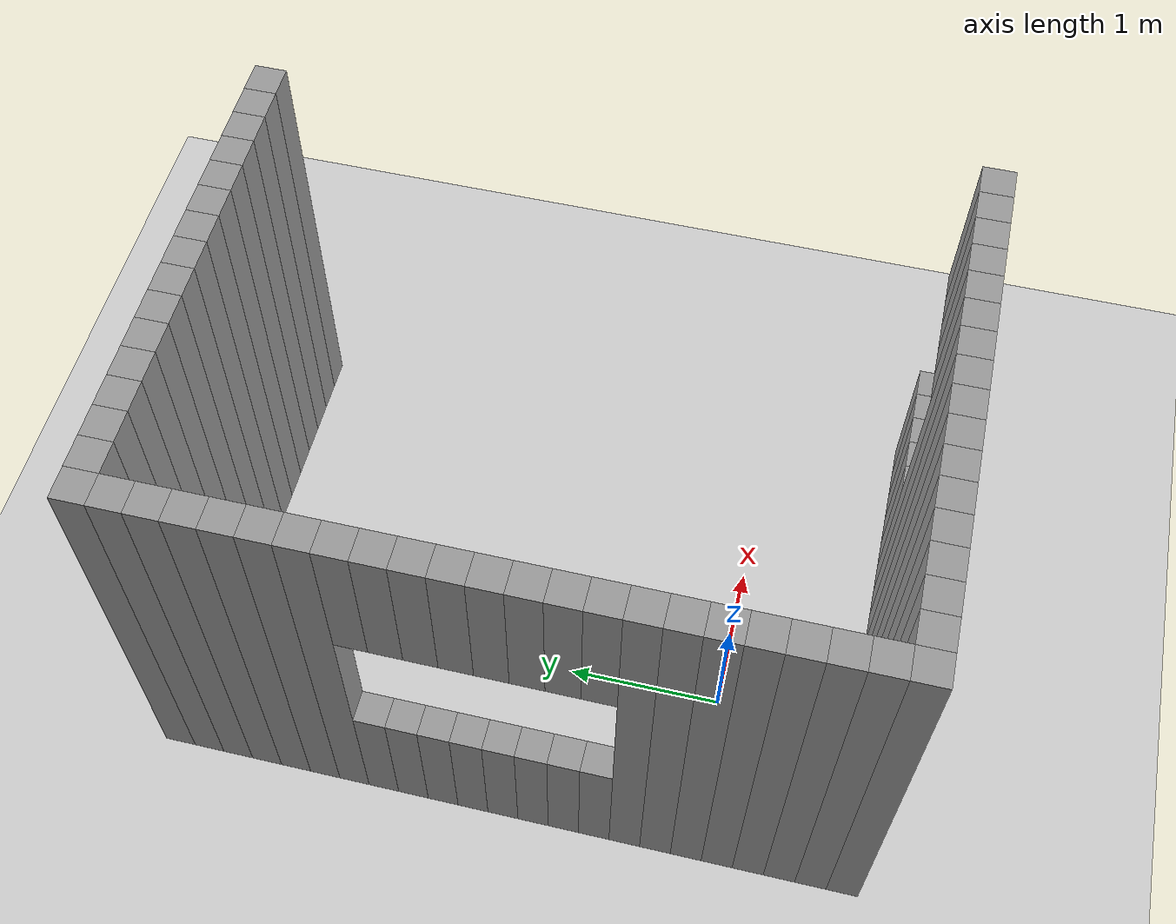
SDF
<sdf version="1.7">
 <world name="default">
  <model name="ground_plane">
   <static>1</static>
   <link name="link">
    <collision name="collision">
     <geometry><plane><normal>0 0 1</normal><size>100 100</size></plane></geometry>
     <surface>
      <contact><collide_bitmask>65535</collide_bitmask></contact>
      <friction><ode><mu>100</mu><mu2>50</mu2></ode></friction>
     </surface>
    </collision>
    <visual name="visual">
     <cast_shadows>0</cast_shadows>
     <geometry><plane><normal>0 0 1</normal><size>100 100</size></plane></geometry>
     <material>
      <script><uri>file://media/materials/scripts/gazebo.material</uri><name>Gazebo/Grey</name></script>
     </material>
    </visual>
   </link>
  </model>
  <model name="05222">
   <pose>-1 -1 0 0 -0 0</pose>
   <link name="Wall_0">
    <collision name="Wall_0_Collision">
     <geometry><box><size>0.2 0.2 3</size></box></geometry>
     <pose>0 0 1.5 0 -0 0</pose>
    </collision>
    <visual name="Wall_0_Visual">
     <pose>0 0 1.5 0 -0 0</pose>
     <geometry><box><size>0.2 0.2 3</size></box></geometry>
     <material>
      <script><uri>file://media/materials/scripts/gazebo.material</uri><name>Gazebo/Grey</name></script>
      <ambient>1 1 1 1</ambient>
     </material>
     <meta><layer>0</layer></meta>
    </visual>
   </link>
   <link name="Wall_1">
    <collision name="Wall_1_Collision">
     <geometry><box><size>0.2 0.2 3</size></box></geometry>
     <pose>0 0 1.5 0 -0 0</pose>
    </collision>
    <visual name="Wall_1_Visual">
     <pose>0 0 1.5 0 -0 0</pose>
     <geometry><box><size>0.2 0.2 3</size></box></geometry>
     <material>
      <script><uri>file://media/materials/scripts/gazebo.material</uri><name>Gazebo/Grey</name></script>
      <ambient>1 1 1 1</ambient>
     </material>
     <meta><layer>0</layer></meta>
    </visual>
    <pose>0.2 0.0 0 0 -0 0</pose>
   </link>
   <link name="Wall_2">
    <collision name="Wall_2_Collision">
     <geometry><box><size>0.2 0.2 3</size></box></geometry>
     <pose>0 0 1.5 0 -0 0</pose>
    </collision>
    <visual name="Wall_2_Visual">
     <pose>0 0 1.5 0 -0 0</pose>
     <geometry><box><size>0.2 0.2 3</size></box></geometry>
     <material>
      <script><uri>file://media/materials/scripts/gazebo.material</uri><name>Gazebo/Grey</name></script>
      <ambient>1 1 1 1</ambient>
     </material>
     <meta><layer>0</layer></meta>
    </visual>
    <pose>0.4 0.0 0 0 -0 0</pose>
   </link>
   <link name="Wall_3">
    <collision name="Wall_3_Collision">
     <geometry><box><size>0.2 0.2 3</size></box></geometry>
     <pose>0 0 1.5 0 -0 0</pose>
    </collision>
    <visual name="Wall_3_Visual">
     <pose>0 0 1.5 0 -0 0</pose>
     <geometry><box><size>0.2 0.2 3</size></box></geometry>
     <material>
      <script><uri>file://media/materials/scripts/gazebo.material</uri><name>Gazebo/Grey</name></script>
      <ambient>1 1 1 1</ambient>
     </material>
     <meta><layer>0</layer></meta>
    </visual>
    <pose>0.6000000000000001 0.0 0 0 -0 0</pose>
   </link>
   <link name="Wall_4">
    <collision name="Wall_4_Collision">
     <geometry><box><size>0.2 0.2 3</size></box></geometry>
     <pose>0 0 1.5 0 -0 0</pose>
    </collision>
    <visual name="Wall_4_Visual">
     <pose>0 0 1.5 0 -0 0</pose>
     <geometry><box><size>0.2 0.2 3</size></box></geometry>
     <material>
      <script><uri>file://media/materials/scripts/gazebo.material</uri><name>Gazebo/Grey</name></script>
      <ambient>1 1 1 1</ambient>
     </material>
     <meta><layer>0</layer></meta>
    </visual>
    <pose>0.8 0.0 0 0 -0 0</pose>
   </link>
   <link name="Wall_5">
    <collision name="Wall_5_Collision">
     <geometry><box><size>0.2 0.2 3</size></box></geometry>
     <pose>0 0 1.5 0 -0 0</pose>
    </collision>
    <visual name="Wall_5_Visual">
     <pose>0 0 1.5 0 -0 0</pose>
     <geometry><box><size>0.2 0.2 3</size></box></geometry>
     <material>
      <script><uri>file://media/materials/scripts/gazebo.material</uri><name>Gazebo/Grey</name></script>
      <ambient>1 1 1 1</ambient>
     </material>
     <meta><layer>0</layer></meta>
    </visual>
    <pose>1.0 0.0 0 0 -0 0</pose>
   </link>
   <link name="Wall_6">
    <collision name="Wall_6_Collision">
     <geometry><box><size>0.2 0.2 3</size></box></geometry>
     <pose>0 0 1.5 0 -0 0</pose>
    </collision>
    <visual name="Wall_6_Visual">
     <pose>0 0 1.5 0 -0 0</pose>
     <geometry><box><size>0.2 0.2 3</size></box></geometry>
     <material>
      <script><uri>file://media/materials/scripts/gazebo.material</uri><name>Gazebo/Grey</name></script>
      <ambient>1 1 1 1</ambient>
     </material>
     <meta><layer>0</layer></meta>
    </visual>
    <pose>1.2000000000000002 0.0 0 0 -0 0</pose>
   </link>
   <link name="Wall_7">
    <collision name="Wall_7_Collision">
     <geometry><box><size>0.2 0.2 3</size></box></geometry>
     <pose>0 0 1.5 0 -0 0</pose>
    </collision>
    <visual name="Wall_7_Visual">
     <pose>0 0 1.5 0 -0 0</pose>
     <geometry><box><size>0.2 0.2 3</size></box></geometry>
     <material>
      <script><uri>file://media/materials/scripts/gazebo.material</uri><name>Gazebo/Grey</name></script>
      <ambient>1 1 1 1</ambient>
     </material>
     <meta><layer>0</layer></meta>
    </visual>
    <pose>1.4000000000000001 0.0 0 0 -0 0</pose>
   </link>
   <link name="Wall_8">
    <collision name="Wall_8_Collision">
     <geometry><box><size>0.2 0.2 3</size></box></geometry>
     <pose>0 0 1.5 0 -0 0</pose>
    </collision>
    <visual name="Wall_8_Visual">
     <pose>0 0 1.5 0 -0 0</pose>
     <geometry><box><size>0.2 0.2 3</size></box></geometry>
     <material>
      <script><uri>file://media/materials/scripts/gazebo.material</uri><name>Gazebo/Grey</name></script>
      <ambient>1 1 1 1</ambient>
     </material>
     <meta><layer>0</layer></meta>
    </visual>
    <pose>1.6 0.0 0 0 -0 0</pose>
   </link>
   <link name="Wall_9">
    <collision name="Wall_9_Collision">
     <geometry><box><size>0.2 0.2 3</size></box></geometry>
     <pose>0 0 1.5 0 -0 0</pose>
    </collision>
    <visual name="Wall_9_Visual">
     <pose>0 0 1.5 0 -0 0</pose>
     <geometry><box><size>0.2 0.2 3</size></box></geometry>
     <material>
      <script><uri>file://media/materials/scripts/gazebo.material</uri><name>Gazebo/Grey</name></script>
      <ambient>1 1 1 1</ambient>
     </material>
     <meta><layer>0</layer></meta>
    </visual>
    <pose>1.8 0.0 0 0 -0 0</pose>
   </link>
   <link name="Wall_10">
    <collision name="Wall_10_Collision">
     <geometry><box><size>0.2 0.2 3</size></box></geometry>
     <pose>0 0 1.5 0 -0 0</pose>
    </collision>
    <visual name="Wall_10_Visual">
     <pose>0 0 1.5 0 -0 0</pose>
     <geometry><box><size>0.2 0.2 3</size></box></geometry>
     <material>
      <script><uri>file://media/materials/scripts/gazebo.material</uri><name>Gazebo/Grey</name></script>
      <ambient>1 1 1 1</ambient>
     </material>
     <meta><layer>0</layer></meta>
    </visual>
    <pose>2.0 0.0 0 0 -0 0</pose>
   </link>
   <link name="Wall_11">
    <collision name="Wall_11_Collision">
     <geometry><box><size>0.2 0.2 3</size></box></geometry>
     <pose>0 0 1.5 0 -0 0</pose>
    </collision>
    <visual name="Wall_11_Visual">
     <pose>0 0 1.5 0 -0 0</pose>
     <geometry><box><size>0.2 0.2 3</size></box></geometry>
     <material>
      <script><uri>file://media/materials/scripts/gazebo.material</uri><name>Gazebo/Grey</name></script>
      <ambient>1 1 1 1</ambient>
     </material>
     <meta><layer>0</layer></meta>
    </visual>
    <pose>2.2 0.0 0 0 -0 0</pose>
   </link>
   <link name="Wall_12">
    <collision name="Wall_12_Collision">
     <geometry><box><size>0.2 0.2 1.0</size></box></geometry>
     <pose>0 0 0.5 0 -0 0</pose>
    </collision>
    <visual name="Wall_12_Visual">
     <pose>0 0 0.5 0 -0 0</pose>
     <geometry><box><size>0.2 0.2 1.0</size></box></geometry>
     <material>
      <script><uri>file://media/materials/scripts/gazebo.material</uri><name>Gazebo/Grey</name></script>
      <ambient>1 1 1 1</ambient>
     </material>
     <meta><layer>0</layer></meta>
    </visual>
    <pose>2.4000000000000004 0.0 0 0 -0 0</pose>
   </link>
   <link name="Wall_13">
    <collision name="Wall_13_Collision">
     <geometry><box><size>0.2 0.2 1.0</size></box></geometry>
     <pose>0 0 2.5 0 -0 0</pose>
    </collision>
    <visual name="Wall_13_Visual">
     <pose>0 0 2.5 0 -0 0</pose>
     <geometry><box><size>0.2 0.2 1.0</size></box></geometry>
     <material>
      <script><uri>file://media/materials/scripts/gazebo.material</uri><name>Gazebo/Grey</name></script>
      <ambient>1 1 1 1</ambient>
     </material>
     <meta><layer>0</layer></meta>
    </visual>
    <pose>2.4000000000000004 0.0 0 0 -0 0</pose>
   </link>
   <link name="Window_12">
    <collision name="Window_12_Collision">
     <geometry><box><size>0.2 0.2 1.0</size></box></geometry>
     <pose>0 0 1.5 0 -0 0</pose>
    </collision>
    <visual name="Wall_13_Visual">
     <pose>0 0 2.5 0 -0 0</pose>
     <geometry><box><size>0.2 0.2 1.0</size></box></geometry>
     <material>
      <script><uri>file://media/materials/scripts/gazebo.material</uri><name>Gazebo/Grey</name></script>
      <ambient>1 1 1 1</ambient>
     </material>
     <meta><layer>0</layer></meta>
    </visual>
    <pose>2.4000000000000004 0.0 0 0 -0 0</pose>
   </link>
   <link name="Wall_14">
    <collision name="Wall_14_Collision">
     <geometry><box><size>0.2 0.2 1.0</size></box></geometry>
     <pose>0 0 0.5 0 -0 0</pose>
    </collision>
    <visual name="Wall_14_Visual">
     <pose>0 0 0.5 0 -0 0</pose>
     <geometry><box><size>0.2 0.2 1.0</size></box></geometry>
     <material>
      <script><uri>file://media/materials/scripts/gazebo.material</uri><name>Gazebo/Grey</name></script>
      <ambient>1 1 1 1</ambient>
     </material>
     <meta><layer>0</layer></meta>
    </visual>
    <pose>2.6 0.0 0 0 -0 0</pose>
   </link>
   <link name="Wall_15">
    <collision name="Wall_15_Collision">
     <geometry><box><size>0.2 0.2 1.0</size></box></geometry>
     <pose>0 0 2.5 0 -0 0</pose>
    </collision>
    <visual name="Wall_15_Visual">
     <pose>0 0 2.5 0 -0 0</pose>
     <geometry><box><size>0.2 0.2 1.0</size></box></geometry>
     <material>
      <script><uri>file://media/materials/scripts/gazebo.material</uri><name>Gazebo/Grey</name></script>
      <ambient>1 1 1 1</ambient>
     </material>
     <meta><layer>0</layer></meta>
    </visual>
    <pose>2.6 0.0 0 0 -0 0</pose>
   </link>
   <link name="Window_14">
    <collision name="Window_14_Collision">
     <geometry><box><size>0.2 0.2 1.0</size></box></geometry>
     <pose>0 0 1.5 0 -0 0</pose>
    </collision>
    <visual name="Wall_15_Visual">
     <pose>0 0 2.5 0 -0 0</pose>
     <geometry><box><size>0.2 0.2 1.0</size></box></geometry>
     <material>
      <script><uri>file://media/materials/scripts/gazebo.material</uri><name>Gazebo/Grey</name></script>
      <ambient>1 1 1 1</ambient>
     </material>
     <meta><layer>0</layer></meta>
    </visual>
    <pose>2.6 0.0 0 0 -0 0</pose>
   </link>
   <link name="Wall_16">
    <collision name="Wall_16_Collision">
     <geometry><box><size>0.2 0.2 1.0</size></box></geometry>
     <pose>0 0 0.5 0 -0 0</pose>
    </collision>
    <visual name="Wall_16_Visual">
     <pose>0 0 0.5 0 -0 0</pose>
     <geometry><box><size>0.2 0.2 1.0</size></box></geometry>
     <material>
      <script><uri>file://media/materials/scripts/gazebo.material</uri><name>Gazebo/Grey</name></script>
      <ambient>1 1 1 1</ambient>
     </material>
     <meta><layer>0</layer></meta>
    </visual>
    <pose>2.8000000000000003 0.0 0 0 -0 0</pose>
   </link>
   <link name="Wall_17">
    <collision name="Wall_17_Collision">
     <geometry><box><size>0.2 0.2 1.0</size></box></geometry>
     <pose>0 0 2.5 0 -0 0</pose>
    </collision>
    <visual name="Wall_17_Visual">
     <pose>0 0 2.5 0 -0 0</pose>
     <geometry><box><size>0.2 0.2 1.0</size></box></geometry>
     <material>
      <script><uri>file://media/materials/scripts/gazebo.material</uri><name>Gazebo/Grey</name></script>
      <ambient>1 1 1 1</ambient>
     </material>
     <meta><layer>0</layer></meta>
    </visual>
    <pose>2.8000000000000003 0.0 0 0 -0 0</pose>
   </link>
   <link name="Window_16">
    <collision name="Window_16_Collision">
     <geometry><box><size>0.2 0.2 1.0</size></box></geometry>
     <pose>0 0 1.5 0 -0 0</pose>
    </collision>
    <visual name="Wall_17_Visual">
     <pose>0 0 2.5 0 -0 0</pose>
     <geometry><box><size>0.2 0.2 1.0</size></box></geometry>
     <material>
      <script><uri>file://media/materials/scripts/gazebo.material</uri><name>Gazebo/Grey</name></script>
      <ambient>1 1 1 1</ambient>
     </material>
     <meta><layer>0</layer></meta>
    </visual>
    <pose>2.8000000000000003 0.0 0 0 -0 0</pose>
   </link>
   <link name="Wall_18">
    <collision name="Wall_18_Collision">
     <geometry><box><size>0.2 0.2 1.0</size></box></geometry>
     <pose>0 0 0.5 0 -0 0</pose>
    </collision>
    <visual name="Wall_18_Visual">
     <pose>0 0 0.5 0 -0 0</pose>
     <geometry><box><size>0.2 0.2 1.0</size></box></geometry>
     <material>
      <script><uri>file://media/materials/scripts/gazebo.material</uri><name>Gazebo/Grey</name></script>
      <ambient>1 1 1 1</ambient>
     </material>
     <meta><layer>0</layer></meta>
    </visual>
    <pose>3.0 0.0 0 0 -0 0</pose>
   </link>
   <link name="Wall_19">
    <collision name="Wall_19_Collision">
     <geometry><box><size>0.2 0.2 1.0</size></box></geometry>
     <pose>0 0 2.5 0 -0 0</pose>
    </collision>
    <visual name="Wall_19_Visual">
     <pose>0 0 2.5 0 -0 0</pose>
     <geometry><box><size>0.2 0.2 1.0</size></box></geometry>
     <material>
      <script><uri>file://media/materials/scripts/gazebo.material</uri><name>Gazebo/Grey</name></script>
      <ambient>1 1 1 1</ambient>
     </material>
     <meta><layer>0</layer></meta>
    </visual>
    <pose>3.0 0.0 0 0 -0 0</pose>
   </link>
   <link name="Window_18">
    <collision name="Window_18_Collision">
     <geometry><box><size>0.2 0.2 1.0</size></box></geometry>
     <pose>0 0 1.5 0 -0 0</pose>
    </collision>
    <visual name="Wall_19_Visual">
     <pose>0 0 2.5 0 -0 0</pose>
     <geometry><box><size>0.2 0.2 1.0</size></box></geometry>
     <material>
      <script><uri>file://media/materials/scripts/gazebo.material</uri><name>Gazebo/Grey</name></script>
      <ambient>1 1 1 1</ambient>
     </material>
     <meta><layer>0</layer></meta>
    </visual>
    <pose>3.0 0.0 0 0 -0 0</pose>
   </link>
   <link name="Wall_20">
    <collision name="Wall_20_Collision">
     <geometry><box><size>0.2 0.2 1.0</size></box></geometry>
     <pose>0 0 0.5 0 -0 0</pose>
    </collision>
    <visual name="Wall_20_Visual">
     <pose>0 0 0.5 0 -0 0</pose>
     <geometry><box><size>0.2 0.2 1.0</size></box></geometry>
     <material>
      <script><uri>file://media/materials/scripts/gazebo.material</uri><name>Gazebo/Grey</name></script>
      <ambient>1 1 1 1</ambient>
     </material>
     <meta><layer>0</layer></meta>
    </visual>
    <pose>3.2 0.0 0 0 -0 0</pose>
   </link>
   <link name="Wall_21">
    <collision name="Wall_21_Collision">
     <geometry><box><size>0.2 0.2 1.0</size></box></geometry>
     <pose>0 0 2.5 0 -0 0</pose>
    </collision>
    <visual name="Wall_21_Visual">
     <pose>0 0 2.5 0 -0 0</pose>
     <geometry><box><size>0.2 0.2 1.0</size></box></geometry>
     <material>
      <script><uri>file://media/materials/scripts/gazebo.material</uri><name>Gazebo/Grey</name></script>
      <ambient>1 1 1 1</ambient>
     </material>
     <meta><layer>0</layer></meta>
    </visual>
    <pose>3.2 0.0 0 0 -0 0</pose>
   </link>
   <link name="Window_20">
    <collision name="Window_20_Collision">
     <geometry><box><size>0.2 0.2 1.0</size></box></geometry>
     <pose>0 0 1.5 0 -0 0</pose>
    </collision>
    <visual name="Wall_21_Visual">
     <pose>0 0 2.5 0 -0 0</pose>
     <geometry><box><size>0.2 0.2 1.0</size></box></geometry>
     <material>
      <script><uri>file://media/materials/scripts/gazebo.material</uri><name>Gazebo/Grey</name></script>
      <ambient>1 1 1 1</ambient>
     </material>
     <meta><layer>0</layer></meta>
    </visual>
    <pose>3.2 0.0 0 0 -0 0</pose>
   </link>
   <link name="Wall_119">
    <collision name="Wall_119_Collision">
     <geometry><box><size>0.2 0.2 3</size></box></geometry>
     <pose>0 0 1.5 0 -0 0</pose>
    </collision>
    <visual name="Wall_119_Visual">
     <pose>0 0 1.5 0 -0 0</pose>
     <geometry><box><size>0.2 0.2 3</size></box></geometry>
     <material>
      <script><uri>file://media/materials/scripts/gazebo.material</uri><name>Gazebo/Grey</name></script>
      <ambient>1 1 1 1</ambient>
     </material>
     <meta><layer>0</layer></meta>
    </visual>
    <pose>0.0 0.2 0 0 -0 0</pose>
   </link>
   <link name="Wall_124">
    <collision name="Wall_124_Collision">
     <geometry><box><size>0.2 0.2 3</size></box></geometry>
     <pose>0 0 1.5 0 -0 0</pose>
    </collision>
    <visual name="Wall_124_Visual">
     <pose>0 0 1.5 0 -0 0</pose>
     <geometry><box><size>0.2 0.2 3</size></box></geometry>
     <material>
      <script><uri>file://media/materials/scripts/gazebo.material</uri><name>Gazebo/Grey</name></script>
      <ambient>1 1 1 1</ambient>
     </material>
     <meta><layer>0</layer></meta>
    </visual>
    <pose>0.0 0.4 0 0 -0 0</pose>
   </link>
   <link name="Wall_129">
    <collision name="Wall_129_Collision">
     <geometry><box><size>0.2 0.2 3</size></box></geometry>
     <pose>0 0 1.5 0 -0 0</pose>
    </collision>
    <visual name="Wall_129_Visual">
     <pose>0 0 1.5 0 -0 0</pose>
     <geometry><box><size>0.2 0.2 3</size></box></geometry>
     <material>
      <script><uri>file://media/materials/scripts/gazebo.material</uri><name>Gazebo/Grey</name></script>
      <ambient>1 1 1 1</ambient>
     </material>
     <meta><layer>0</layer></meta>
    </visual>
    <pose>0.0 0.6000000000000001 0 0 -0 0</pose>
   </link>
   <link name="Wall_134">
    <collision name="Wall_134_Collision">
     <geometry><box><size>0.2 0.2 3</size></box></geometry>
     <pose>0 0 1.5 0 -0 0</pose>
    </collision>
    <visual name="Wall_134_Visual">
     <pose>0 0 1.5 0 -0 0</pose>
     <geometry><box><size>0.2 0.2 3</size></box></geometry>
     <material>
      <script><uri>file://media/materials/scripts/gazebo.material</uri><name>Gazebo/Grey</name></script>
      <ambient>1 1 1 1</ambient>
     </material>
     <meta><layer>0</layer></meta>
    </visual>
    <pose>0.0 0.8 0 0 -0 0</pose>
   </link>
   <link name="Wall_139">
    <collision name="Wall_139_Collision">
     <geometry><box><size>0.2 0.2 3</size></box></geometry>
     <pose>0 0 1.5 0 -0 0</pose>
    </collision>
    <visual name="Wall_139_Visual">
     <pose>0 0 1.5 0 -0 0</pose>
     <geometry><box><size>0.2 0.2 3</size></box></geometry>
     <material>
      <script><uri>file://media/materials/scripts/gazebo.material</uri><name>Gazebo/Grey</name></script>
      <ambient>1 1 1 1</ambient>
     </material>
     <meta><layer>0</layer></meta>
    </visual>
    <pose>0.0 1.0 0 0 -0 0</pose>
   </link>
   <link name="Wall_144">
    <collision name="Wall_144_Collision">
     <geometry><box><size>0.2 0.2 3</size></box></geometry>
     <pose>0 0 1.5 0 -0 0</pose>
    </collision>
    <visual name="Wall_144_Visual">
     <pose>0 0 1.5 0 -0 0</pose>
     <geometry><box><size>0.2 0.2 3</size></box></geometry>
     <material>
      <script><uri>file://media/materials/scripts/gazebo.material</uri><name>Gazebo/Grey</name></script>
      <ambient>1 1 1 1</ambient>
     </material>
     <meta><layer>0</layer></meta>
    </visual>
    <pose>0.0 1.2000000000000002 0 0 -0 0</pose>
   </link>
   <link name="Wall_149">
    <collision name="Wall_149_Collision">
     <geometry><box><size>0.2 0.2 3</size></box></geometry>
     <pose>0 0 1.5 0 -0 0</pose>
    </collision>
    <visual name="Wall_149_Visual">
     <pose>0 0 1.5 0 -0 0</pose>
     <geometry><box><size>0.2 0.2 3</size></box></geometry>
     <material>
      <script><uri>file://media/materials/scripts/gazebo.material</uri><name>Gazebo/Grey</name></script>
      <ambient>1 1 1 1</ambient>
     </material>
     <meta><layer>0</layer></meta>
    </visual>
    <pose>0.0 1.4000000000000001 0 0 -0 0</pose>
   </link>
   <link name="Wall_154">
    <collision name="Wall_154_Collision">
     <geometry><box><size>0.2 0.2 1.0</size></box></geometry>
     <pose>0 0 0.5 0 -0 0</pose>
    </collision>
    <visual name="Wall_154_Visual">
     <pose>0 0 0.5 0 -0 0</pose>
     <geometry><box><size>0.2 0.2 1.0</size></box></geometry>
     <material>
      <script><uri>file://media/materials/scripts/gazebo.material</uri><name>Gazebo/Grey</name></script>
      <ambient>1 1 1 1</ambient>
     </material>
     <meta><layer>0</layer></meta>
    </visual>
    <pose>0.0 1.6 0 0 -0 0</pose>
   </link>
   <link name="Wall_155">
    <collision name="Wall_155_Collision">
     <geometry><box><size>0.2 0.2 1.0</size></box></geometry>
     <pose>0 0 2.5 0 -0 0</pose>
    </collision>
    <visual name="Wall_155_Visual">
     <pose>0 0 2.5 0 -0 0</pose>
     <geometry><box><size>0.2 0.2 1.0</size></box></geometry>
     <material>
      <script><uri>file://media/materials/scripts/gazebo.material</uri><name>Gazebo/Grey</name></script>
      <ambient>1 1 1 1</ambient>
     </material>
     <meta><layer>0</layer></meta>
    </visual>
    <pose>0.0 1.6 0 0 -0 0</pose>
   </link>
   <link name="Window_154">
    <collision name="Window_154_Collision">
     <geometry><box><size>0.2 0.2 1.0</size></box></geometry>
     <pose>0 0 1.5 0 -0 0</pose>
    </collision>
    <visual name="Wall_155_Visual">
     <pose>0 0 2.5 0 -0 0</pose>
     <geometry><box><size>0.2 0.2 1.0</size></box></geometry>
     <material>
      <script><uri>file://media/materials/scripts/gazebo.material</uri><name>Gazebo/Grey</name></script>
      <ambient>1 1 1 1</ambient>
     </material>
     <meta><layer>0</layer></meta>
    </visual>
    <pose>0.0 1.6 0 0 -0 0</pose>
   </link>
   <link name="Wall_160">
    <collision name="Wall_160_Collision">
     <geometry><box><size>0.2 0.2 1.0</size></box></geometry>
     <pose>0 0 0.5 0 -0 0</pose>
    </collision>
    <visual name="Wall_160_Visual">
     <pose>0 0 0.5 0 -0 0</pose>
     <geometry><box><size>0.2 0.2 1.0</size></box></geometry>
     <material>
      <script><uri>file://media/materials/scripts/gazebo.material</uri><name>Gazebo/Grey</name></script>
      <ambient>1 1 1 1</ambient>
     </material>
     <meta><layer>0</layer></meta>
    </visual>
    <pose>0.0 1.8 0 0 -0 0</pose>
   </link>
   <link name="Wall_161">
    <collision name="Wall_161_Collision">
     <geometry><box><size>0.2 0.2 1.0</size></box></geometry>
     <pose>0 0 2.5 0 -0 0</pose>
    </collision>
    <visual name="Wall_161_Visual">
     <pose>0 0 2.5 0 -0 0</pose>
     <geometry><box><size>0.2 0.2 1.0</size></box></geometry>
     <material>
      <script><uri>file://media/materials/scripts/gazebo.material</uri><name>Gazebo/Grey</name></script>
      <ambient>1 1 1 1</ambient>
     </material>
     <meta><layer>0</layer></meta>
    </visual>
    <pose>0.0 1.8 0 0 -0 0</pose>
   </link>
   <link name="Window_160">
    <collision name="Window_160_Collision">
     <geometry><box><size>0.2 0.2 1.0</size></box></geometry>
     <pose>0 0 1.5 0 -0 0</pose>
    </collision>
    <visual name="Wall_161_Visual">
     <pose>0 0 2.5 0 -0 0</pose>
     <geometry><box><size>0.2 0.2 1.0</size></box></geometry>
     <material>
      <script><uri>file://media/materials/scripts/gazebo.material</uri><name>Gazebo/Grey</name></script>
      <ambient>1 1 1 1</ambient>
     </material>
     <meta><layer>0</layer></meta>
    </visual>
    <pose>0.0 1.8 0 0 -0 0</pose>
   </link>
   <link name="Wall_166">
    <collision name="Wall_166_Collision">
     <geometry><box><size>0.2 0.2 1.0</size></box></geometry>
     <pose>0 0 0.5 0 -0 0</pose>
    </collision>
    <visual name="Wall_166_Visual">
     <pose>0 0 0.5 0 -0 0</pose>
     <geometry><box><size>0.2 0.2 1.0</size></box></geometry>
     <material>
      <script><uri>file://media/materials/scripts/gazebo.material</uri><name>Gazebo/Grey</name></script>
      <ambient>1 1 1 1</ambient>
     </material>
     <meta><layer>0</layer></meta>
    </visual>
    <pose>0.0 2.0 0 0 -0 0</pose>
   </link>
   <link name="Wall_167">
    <collision name="Wall_167_Collision">
     <geometry><box><size>0.2 0.2 1.0</size></box></geometry>
     <pose>0 0 2.5 0 -0 0</pose>
    </collision>
    <visual name="Wall_167_Visual">
     <pose>0 0 2.5 0 -0 0</pose>
     <geometry><box><size>0.2 0.2 1.0</size></box></geometry>
     <material>
      <script><uri>file://media/materials/scripts/gazebo.material</uri><name>Gazebo/Grey</name></script>
      <ambient>1 1 1 1</ambient>
     </material>
     <meta><layer>0</layer></meta>
    </visual>
    <pose>0.0 2.0 0 0 -0 0</pose>
   </link>
   <link name="Window_166">
    <collision name="Window_166_Collision">
     <geometry><box><size>0.2 0.2 1.0</size></box></geometry>
     <pose>0 0 1.5 0 -0 0</pose>
    </collision>
    <visual name="Wall_167_Visual">
     <pose>0 0 2.5 0 -0 0</pose>
     <geometry><box><size>0.2 0.2 1.0</size></box></geometry>
     <material>
      <script><uri>file://media/materials/scripts/gazebo.material</uri><name>Gazebo/Grey</name></script>
      <ambient>1 1 1 1</ambient>
     </material>
     <meta><layer>0</layer></meta>
    </visual>
    <pose>0.0 2.0 0 0 -0 0</pose>
   </link>
   <link name="Wall_172">
    <collision name="Wall_172_Collision">
     <geometry><box><size>0.2 0.2 1.0</size></box></geometry>
     <pose>0 0 0.5 0 -0 0</pose>
    </collision>
    <visual name="Wall_172_Visual">
     <pose>0 0 0.5 0 -0 0</pose>
     <geometry><box><size>0.2 0.2 1.0</size></box></geometry>
     <material>
      <script><uri>file://media/materials/scripts/gazebo.material</uri><name>Gazebo/Grey</name></script>
      <ambient>1 1 1 1</ambient>
     </material>
     <meta><layer>0</layer></meta>
    </visual>
    <pose>0.0 2.2 0 0 -0 0</pose>
   </link>
   <link name="Wall_173">
    <collision name="Wall_173_Collision">
     <geometry><box><size>0.2 0.2 1.0</size></box></geometry>
     <pose>0 0 2.5 0 -0 0</pose>
    </collision>
    <visual name="Wall_173_Visual">
     <pose>0 0 2.5 0 -0 0</pose>
     <geometry><box><size>0.2 0.2 1.0</size></box></geometry>
     <material>
      <script><uri>file://media/materials/scripts/gazebo.material</uri><name>Gazebo/Grey</name></script>
      <ambient>1 1 1 1</ambient>
     </material>
     <meta><layer>0</layer></meta>
    </visual>
    <pose>0.0 2.2 0 0 -0 0</pose>
   </link>
   <link name="Window_172">
    <collision name="Window_172_Collision">
     <geometry><box><size>0.2 0.2 1.0</size></box></geometry>
     <pose>0 0 1.5 0 -0 0</pose>
    </collision>
    <visual name="Wall_173_Visual">
     <pose>0 0 2.5 0 -0 0</pose>
     <geometry><box><size>0.2 0.2 1.0</size></box></geometry>
     <material>
      <script><uri>file://media/materials/scripts/gazebo.material</uri><name>Gazebo/Grey</name></script>
      <ambient>1 1 1 1</ambient>
     </material>
     <meta><layer>0</layer></meta>
    </visual>
    <pose>0.0 2.2 0 0 -0 0</pose>
   </link>
   <link name="Wall_178">
    <collision name="Wall_178_Collision">
     <geometry><box><size>0.2 0.2 1.0</size></box></geometry>
     <pose>0 0 0.5 0 -0 0</pose>
    </collision>
    <visual name="Wall_178_Visual">
     <pose>0 0 0.5 0 -0 0</pose>
     <geometry><box><size>0.2 0.2 1.0</size></box></geometry>
     <material>
      <script><uri>file://media/materials/scripts/gazebo.material</uri><name>Gazebo/Grey</name></script>
      <ambient>1 1 1 1</ambient>
     </material>
     <meta><layer>0</layer></meta>
    </visual>
    <pose>0.0 2.4000000000000004 0 0 -0 0</pose>
   </link>
   <link name="Wall_179">
    <collision name="Wall_179_Collision">
     <geometry><box><size>0.2 0.2 1.0</size></box></geometry>
     <pose>0 0 2.5 0 -0 0</pose>
    </collision>
    <visual name="Wall_179_Visual">
     <pose>0 0 2.5 0 -0 0</pose>
     <geometry><box><size>0.2 0.2 1.0</size></box></geometry>
     <material>
      <script><uri>file://media/materials/scripts/gazebo.material</uri><name>Gazebo/Grey</name></script>
      <ambient>1 1 1 1</ambient>
     </material>
     <meta><layer>0</layer></meta>
    </visual>
    <pose>0.0 2.4000000000000004 0 0 -0 0</pose>
   </link>
   <link name="Window_178">
    <collision name="Window_178_Collision">
     <geometry><box><size>0.2 0.2 1.0</size></box></geometry>
     <pose>0 0 1.5 0 -0 0</pose>
    </collision>
    <visual name="Wall_179_Visual">
     <pose>0 0 2.5 0 -0 0</pose>
     <geometry><box><size>0.2 0.2 1.0</size></box></geometry>
     <material>
      <script><uri>file://media/materials/scripts/gazebo.material</uri><name>Gazebo/Grey</name></script>
      <ambient>1 1 1 1</ambient>
     </material>
     <meta><layer>0</layer></meta>
    </visual>
    <pose>0.0 2.4000000000000004 0 0 -0 0</pose>
   </link>
   <link name="Wall_184">
    <collision name="Wall_184_Collision">
     <geometry><box><size>0.2 0.2 1.0</size></box></geometry>
     <pose>0 0 0.5 0 -0 0</pose>
    </collision>
    <visual name="Wall_184_Visual">
     <pose>0 0 0.5 0 -0 0</pose>
     <geometry><box><size>0.2 0.2 1.0</size></box></geometry>
     <material>
      <script><uri>file://media/materials/scripts/gazebo.material</uri><name>Gazebo/Grey</name></script>
      <ambient>1 1 1 1</ambient>
     </material>
     <meta><layer>0</layer></meta>
    </visual>
    <pose>0.0 2.6 0 0 -0 0</pose>
   </link>
   <link name="Wall_185">
    <collision name="Wall_185_Collision">
     <geometry><box><size>0.2 0.2 1.0</size></box></geometry>
     <pose>0 0 2.5 0 -0 0</pose>
    </collision>
    <visual name="Wall_185_Visual">
     <pose>0 0 2.5 0 -0 0</pose>
     <geometry><box><size>0.2 0.2 1.0</size></box></geometry>
     <material>
      <script><uri>file://media/materials/scripts/gazebo.material</uri><name>Gazebo/Grey</name></script>
      <ambient>1 1 1 1</ambient>
     </material>
     <meta><layer>0</layer></meta>
    </visual>
    <pose>0.0 2.6 0 0 -0 0</pose>
   </link>
   <link name="Window_184">
    <collision name="Window_184_Collision">
     <geometry><box><size>0.2 0.2 1.0</size></box></geometry>
     <pose>0 0 1.5 0 -0 0</pose>
    </collision>
    <visual name="Wall_185_Visual">
     <pose>0 0 2.5 0 -0 0</pose>
     <geometry><box><size>0.2 0.2 1.0</size></box></geometry>
     <material>
      <script><uri>file://media/materials/scripts/gazebo.material</uri><name>Gazebo/Grey</name></script>
      <ambient>1 1 1 1</ambient>
     </material>
     <meta><layer>0</layer></meta>
    </visual>
    <pose>0.0 2.6 0 0 -0 0</pose>
   </link>
   <link name="Wall_190">
    <collision name="Wall_190_Collision">
     <geometry><box><size>0.2 0.2 1.0</size></box></geometry>
     <pose>0 0 0.5 0 -0 0</pose>
    </collision>
    <visual name="Wall_190_Visual">
     <pose>0 0 0.5 0 -0 0</pose>
     <geometry><box><size>0.2 0.2 1.0</size></box></geometry>
     <material>
      <script><uri>file://media/materials/scripts/gazebo.material</uri><name>Gazebo/Grey</name></script>
      <ambient>1 1 1 1</ambient>
     </material>
     <meta><layer>0</layer></meta>
    </visual>
    <pose>0.0 2.8000000000000003 0 0 -0 0</pose>
   </link>
   <link name="Wall_191">
    <collision name="Wall_191_Collision">
     <geometry><box><size>0.2 0.2 1.0</size></box></geometry>
     <pose>0 0 2.5 0 -0 0</pose>
    </collision>
    <visual name="Wall_191_Visual">
     <pose>0 0 2.5 0 -0 0</pose>
     <geometry><box><size>0.2 0.2 1.0</size></box></geometry>
     <material>
      <script><uri>file://media/materials/scripts/gazebo.material</uri><name>Gazebo/Grey</name></script>
      <ambient>1 1 1 1</ambient>
     </material>
     <meta><layer>0</layer></meta>
    </visual>
    <pose>0.0 2.8000000000000003 0 0 -0 0</pose>
   </link>
   <link name="Window_190">
    <collision name="Window_190_Collision">
     <geometry><box><size>0.2 0.2 1.0</size></box></geometry>
     <pose>0 0 1.5 0 -0 0</pose>
    </collision>
    <visual name="Wall_191_Visual">
     <pose>0 0 2.5 0 -0 0</pose>
     <geometry><box><size>0.2 0.2 1.0</size></box></geometry>
     <material>
      <script><uri>file://media/materials/scripts/gazebo.material</uri><name>Gazebo/Grey</name></script>
      <ambient>1 1 1 1</ambient>
     </material>
     <meta><layer>0</layer></meta>
    </visual>
    <pose>0.0 2.8000000000000003 0 0 -0 0</pose>
   </link>
   <link name="Wall_197">
    <collision name="Wall_197_Collision">
     <geometry><box><size>0.2 0.2 1.0</size></box></geometry>
     <pose>0 0 0.5 0 -0 0</pose>
    </collision>
    <visual name="Wall_197_Visual">
     <pose>0 0 0.5 0 -0 0</pose>
     <geometry><box><size>0.2 0.2 1.0</size></box></geometry>
     <material>
      <script><uri>file://media/materials/scripts/gazebo.material</uri><name>Gazebo/Grey</name></script>
      <ambient>1 1 1 1</ambient>
     </material>
     <meta><layer>0</layer></meta>
    </visual>
    <pose>0.0 3.0 0 0 -0 0</pose>
   </link>
   <link name="Wall_198">
    <collision name="Wall_198_Collision">
     <geometry><box><size>0.2 0.2 1.0</size></box></geometry>
     <pose>0 0 2.5 0 -0 0</pose>
    </collision>
    <visual name="Wall_198_Visual">
     <pose>0 0 2.5 0 -0 0</pose>
     <geometry><box><size>0.2 0.2 1.0</size></box></geometry>
     <material>
      <script><uri>file://media/materials/scripts/gazebo.material</uri><name>Gazebo/Grey</name></script>
      <ambient>1 1 1 1</ambient>
     </material>
     <meta><layer>0</layer></meta>
    </visual>
    <pose>0.0 3.0 0 0 -0 0</pose>
   </link>
   <link name="Window_197">
    <collision name="Window_197_Collision">
     <geometry><box><size>0.2 0.2 1.0</size></box></geometry>
     <pose>0 0 1.5 0 -0 0</pose>
    </collision>
    <visual name="Wall_198_Visual">
     <pose>0 0 2.5 0 -0 0</pose>
     <geometry><box><size>0.2 0.2 1.0</size></box></geometry>
     <material>
      <script><uri>file://media/materials/scripts/gazebo.material</uri><name>Gazebo/Grey</name></script>
      <ambient>1 1 1 1</ambient>
     </material>
     <meta><layer>0</layer></meta>
    </visual>
    <pose>0.0 3.0 0 0 -0 0</pose>
   </link>
   <link name="Wall_204">
    <collision name="Wall_204_Collision">
     <geometry><box><size>0.2 0.2 3</size></box></geometry>
     <pose>0 0 1.5 0 -0 0</pose>
    </collision>
    <visual name="Wall_204_Visual">
     <pose>0 0 1.5 0 -0 0</pose>
     <geometry><box><size>0.2 0.2 3</size></box></geometry>
     <material>
      <script><uri>file://media/materials/scripts/gazebo.material</uri><name>Gazebo/Grey</name></script>
      <ambient>1 1 1 1</ambient>
     </material>
     <meta><layer>0</layer></meta>
    </visual>
    <pose>0.0 3.2 0 0 -0 0</pose>
   </link>
   <link name="Wall_210">
    <collision name="Wall_210_Collision">
     <geometry><box><size>0.2 0.2 3</size></box></geometry>
     <pose>0 0 1.5 0 -0 0</pose>
    </collision>
    <visual name="Wall_210_Visual">
     <pose>0 0 1.5 0 -0 0</pose>
     <geometry><box><size>0.2 0.2 3</size></box></geometry>
     <material>
      <script><uri>file://media/materials/scripts/gazebo.material</uri><name>Gazebo/Grey</name></script>
      <ambient>1 1 1 1</ambient>
     </material>
     <meta><layer>0</layer></meta>
    </visual>
    <pose>0.0 3.4000000000000004 0 0 -0 0</pose>
   </link>
   <link name="Wall_216">
    <collision name="Wall_216_Collision">
     <geometry><box><size>0.2 0.2 3</size></box></geometry>
     <pose>0 0 1.5 0 -0 0</pose>
    </collision>
    <visual name="Wall_216_Visual">
     <pose>0 0 1.5 0 -0 0</pose>
     <geometry><box><size>0.2 0.2 3</size></box></geometry>
     <material>
      <script><uri>file://media/materials/scripts/gazebo.material</uri><name>Gazebo/Grey</name></script>
      <ambient>1 1 1 1</ambient>
     </material>
     <meta><layer>0</layer></meta>
    </visual>
    <pose>0.0 3.6 0 0 -0 0</pose>
   </link>
   <link name="Wall_222">
    <collision name="Wall_222_Collision">
     <geometry><box><size>0.2 0.2 3</size></box></geometry>
     <pose>0 0 1.5 0 -0 0</pose>
    </collision>
    <visual name="Wall_222_Visual">
     <pose>0 0 1.5 0 -0 0</pose>
     <geometry><box><size>0.2 0.2 3</size></box></geometry>
     <material>
      <script><uri>file://media/materials/scripts/gazebo.material</uri><name>Gazebo/Grey</name></script>
      <ambient>1 1 1 1</ambient>
     </material>
     <meta><layer>0</layer></meta>
    </visual>
    <pose>0.0 3.8000000000000003 0 0 -0 0</pose>
   </link>
   <link name="Wall_228">
    <collision name="Wall_228_Collision">
     <geometry><box><size>0.2 0.2 3</size></box></geometry>
     <pose>0 0 1.5 0 -0 0</pose>
    </collision>
    <visual name="Wall_228_Visual">
     <pose>0 0 1.5 0 -0 0</pose>
     <geometry><box><size>0.2 0.2 3</size></box></geometry>
     <material>
      <script><uri>file://media/materials/scripts/gazebo.material</uri><name>Gazebo/Grey</name></script>
      <ambient>1 1 1 1</ambient>
     </material>
     <meta><layer>0</layer></meta>
    </visual>
    <pose>0.0 4.0 0 0 -0 0</pose>
   </link>
   <link name="Wall_233">
    <collision name="Wall_233_Collision">
     <geometry><box><size>0.2 0.2 3</size></box></geometry>
     <pose>0 0 1.5 0 -0 0</pose>
    </collision>
    <visual name="Wall_233_Visual">
     <pose>0 0 1.5 0 -0 0</pose>
     <geometry><box><size>0.2 0.2 3</size></box></geometry>
     <material>
      <script><uri>file://media/materials/scripts/gazebo.material</uri><name>Gazebo/Grey</name></script>
      <ambient>1 1 1 1</ambient>
     </material>
     <meta><layer>0</layer></meta>
    </visual>
    <pose>0.0 4.2 0 0 -0 0</pose>
   </link>
   <link name="Wall_238">
    <collision name="Wall_238_Collision">
     <geometry><box><size>0.2 0.2 3</size></box></geometry>
     <pose>0 0 1.5 0 -0 0</pose>
    </collision>
    <visual name="Wall_238_Visual">
     <pose>0 0 1.5 0 -0 0</pose>
     <geometry><box><size>0.2 0.2 3</size></box></geometry>
     <material>
      <script><uri>file://media/materials/scripts/gazebo.material</uri><name>Gazebo/Grey</name></script>
      <ambient>1 1 1 1</ambient>
     </material>
     <meta><layer>0</layer></meta>
    </visual>
    <pose>0.0 4.4 0 0 -0 0</pose>
   </link>
   <link name="Wall_239">
    <collision name="Wall_239_Collision">
     <geometry><box><size>0.2 0.2 3</size></box></geometry>
     <pose>0 0 1.5 0 -0 0</pose>
    </collision>
    <visual name="Wall_239_Visual">
     <pose>0 0 1.5 0 -0 0</pose>
     <geometry><box><size>0.2 0.2 3</size></box></geometry>
     <material>
      <script><uri>file://media/materials/scripts/gazebo.material</uri><name>Gazebo/Grey</name></script>
      <ambient>1 1 1 1</ambient>
     </material>
     <meta><layer>0</layer></meta>
    </visual>
    <pose>0.2 4.4 0 0 -0 0</pose>
   </link>
   <link name="Wall_240">
    <collision name="Wall_240_Collision">
     <geometry><box><size>0.2 0.2 3</size></box></geometry>
     <pose>0 0 1.5 0 -0 0</pose>
    </collision>
    <visual name="Wall_240_Visual">
     <pose>0 0 1.5 0 -0 0</pose>
     <geometry><box><size>0.2 0.2 3</size></box></geometry>
     <material>
      <script><uri>file://media/materials/scripts/gazebo.material</uri><name>Gazebo/Grey</name></script>
      <ambient>1 1 1 1</ambient>
     </material>
     <meta><layer>0</layer></meta>
    </visual>
    <pose>0.4 4.4 0 0 -0 0</pose>
   </link>
   <link name="Wall_241">
    <collision name="Wall_241_Collision">
     <geometry><box><size>0.2 0.2 3</size></box></geometry>
     <pose>0 0 1.5 0 -0 0</pose>
    </collision>
    <visual name="Wall_241_Visual">
     <pose>0 0 1.5 0 -0 0</pose>
     <geometry><box><size>0.2 0.2 3</size></box></geometry>
     <material>
      <script><uri>file://media/materials/scripts/gazebo.material</uri><name>Gazebo/Grey</name></script>
      <ambient>1 1 1 1</ambient>
     </material>
     <meta><layer>0</layer></meta>
    </visual>
    <pose>0.6000000000000001 4.4 0 0 -0 0</pose>
   </link>
   <link name="Wall_242">
    <collision name="Wall_242_Collision">
     <geometry><box><size>0.2 0.2 3</size></box></geometry>
     <pose>0 0 1.5 0 -0 0</pose>
    </collision>
    <visual name="Wall_242_Visual">
     <pose>0 0 1.5 0 -0 0</pose>
     <geometry><box><size>0.2 0.2 3</size></box></geometry>
     <material>
      <script><uri>file://media/materials/scripts/gazebo.material</uri><name>Gazebo/Grey</name></script>
      <ambient>1 1 1 1</ambient>
     </material>
     <meta><layer>0</layer></meta>
    </visual>
    <pose>0.8 4.4 0 0 -0 0</pose>
   </link>
   <link name="Wall_243">
    <collision name="Wall_243_Collision">
     <geometry><box><size>0.2 0.2 3</size></box></geometry>
     <pose>0 0 1.5 0 -0 0</pose>
    </collision>
    <visual name="Wall_243_Visual">
     <pose>0 0 1.5 0 -0 0</pose>
     <geometry><box><size>0.2 0.2 3</size></box></geometry>
     <material>
      <script><uri>file://media/materials/scripts/gazebo.material</uri><name>Gazebo/Grey</name></script>
      <ambient>1 1 1 1</ambient>
     </material>
     <meta><layer>0</layer></meta>
    </visual>
    <pose>1.0 4.4 0 0 -0 0</pose>
   </link>
   <link name="Wall_244">
    <collision name="Wall_244_Collision">
     <geometry><box><size>0.2 0.2 3</size></box></geometry>
     <pose>0 0 1.5 0 -0 0</pose>
    </collision>
    <visual name="Wall_244_Visual">
     <pose>0 0 1.5 0 -0 0</pose>
     <geometry><box><size>0.2 0.2 3</size></box></geometry>
     <material>
      <script><uri>file://media/materials/scripts/gazebo.material</uri><name>Gazebo/Grey</name></script>
      <ambient>1 1 1 1</ambient>
     </material>
     <meta><layer>0</layer></meta>
    </visual>
    <pose>1.2000000000000002 4.4 0 0 -0 0</pose>
   </link>
   <link name="Wall_245">
    <collision name="Wall_245_Collision">
     <geometry><box><size>0.2 0.2 3</size></box></geometry>
     <pose>0 0 1.5 0 -0 0</pose>
    </collision>
    <visual name="Wall_245_Visual">
     <pose>0 0 1.5 0 -0 0</pose>
     <geometry><box><size>0.2 0.2 3</size></box></geometry>
     <material>
      <script><uri>file://media/materials/scripts/gazebo.material</uri><name>Gazebo/Grey</name></script>
      <ambient>1 1 1 1</ambient>
     </material>
     <meta><layer>0</layer></meta>
    </visual>
    <pose>1.4000000000000001 4.4 0 0 -0 0</pose>
   </link>
   <link name="Wall_246">
    <collision name="Wall_246_Collision">
     <geometry><box><size>0.2 0.2 3</size></box></geometry>
     <pose>0 0 1.5 0 -0 0</pose>
    </collision>
    <visual name="Wall_246_Visual">
     <pose>0 0 1.5 0 -0 0</pose>
     <geometry><box><size>0.2 0.2 3</size></box></geometry>
     <material>
      <script><uri>file://media/materials/scripts/gazebo.material</uri><name>Gazebo/Grey</name></script>
      <ambient>1 1 1 1</ambient>
     </material>
     <meta><layer>0</layer></meta>
    </visual>
    <pose>1.6 4.4 0 0 -0 0</pose>
   </link>
   <link name="Wall_247">
    <collision name="Wall_247_Collision">
     <geometry><box><size>0.2 0.2 3</size></box></geometry>
     <pose>0 0 1.5 0 -0 0</pose>
    </collision>
    <visual name="Wall_247_Visual">
     <pose>0 0 1.5 0 -0 0</pose>
     <geometry><box><size>0.2 0.2 3</size></box></geometry>
     <material>
      <script><uri>file://media/materials/scripts/gazebo.material</uri><name>Gazebo/Grey</name></script>
      <ambient>1 1 1 1</ambient>
     </material>
     <meta><layer>0</layer></meta>
    </visual>
    <pose>1.8 4.4 0 0 -0 0</pose>
   </link>
   <link name="Wall_248">
    <collision name="Wall_248_Collision">
     <geometry><box><size>0.2 0.2 3</size></box></geometry>
     <pose>0 0 1.5 0 -0 0</pose>
    </collision>
    <visual name="Wall_248_Visual">
     <pose>0 0 1.5 0 -0 0</pose>
     <geometry><box><size>0.2 0.2 3</size></box></geometry>
     <material>
      <script><uri>file://media/materials/scripts/gazebo.material</uri><name>Gazebo/Grey</name></script>
      <ambient>1 1 1 1</ambient>
     </material>
     <meta><layer>0</layer></meta>
    </visual>
    <pose>2.0 4.4 0 0 -0 0</pose>
   </link>
   <link name="Wall_249">
    <collision name="Wall_249_Collision">
     <geometry><box><size>0.2 0.2 3</size></box></geometry>
     <pose>0 0 1.5 0 -0 0</pose>
    </collision>
    <visual name="Wall_249_Visual">
     <pose>0 0 1.5 0 -0 0</pose>
     <geometry><box><size>0.2 0.2 3</size></box></geometry>
     <material>
      <script><uri>file://media/materials/scripts/gazebo.material</uri><name>Gazebo/Grey</name></script>
      <ambient>1 1 1 1</ambient>
     </material>
     <meta><layer>0</layer></meta>
    </visual>
    <pose>2.2 4.4 0 0 -0 0</pose>
   </link>
   <link name="Wall_250">
    <collision name="Wall_250_Collision">
     <geometry><box><size>0.2 0.2 3</size></box></geometry>
     <pose>0 0 1.5 0 -0 0</pose>
    </collision>
    <visual name="Wall_250_Visual">
     <pose>0 0 1.5 0 -0 0</pose>
     <geometry><box><size>0.2 0.2 3</size></box></geometry>
     <material>
      <script><uri>file://media/materials/scripts/gazebo.material</uri><name>Gazebo/Grey</name></script>
      <ambient>1 1 1 1</ambient>
     </material>
     <meta><layer>0</layer></meta>
    </visual>
    <pose>2.4000000000000004 4.4 0 0 -0 0</pose>
   </link>
   <link name="Wall_251">
    <collision name="Wall_251_Collision">
     <geometry><box><size>0.2 0.2 3</size></box></geometry>
     <pose>0 0 1.5 0 -0 0</pose>
    </collision>
    <visual name="Wall_251_Visual">
     <pose>0 0 1.5 0 -0 0</pose>
     <geometry><box><size>0.2 0.2 3</size></box></geometry>
     <material>
      <script><uri>file://media/materials/scripts/gazebo.material</uri><name>Gazebo/Grey</name></script>
      <ambient>1 1 1 1</ambient>
     </material>
     <meta><layer>0</layer></meta>
    </visual>
    <pose>2.6 4.4 0 0 -0 0</pose>
   </link>
   <link name="Wall_252">
    <collision name="Wall_252_Collision">
     <geometry><box><size>0.2 0.2 3</size></box></geometry>
     <pose>0 0 1.5 0 -0 0</pose>
    </collision>
    <visual name="Wall_252_Visual">
     <pose>0 0 1.5 0 -0 0</pose>
     <geometry><box><size>0.2 0.2 3</size></box></geometry>
     <material>
      <script><uri>file://media/materials/scripts/gazebo.material</uri><name>Gazebo/Grey</name></script>
      <ambient>1 1 1 1</ambient>
     </material>
     <meta><layer>0</layer></meta>
    </visual>
    <pose>2.8000000000000003 4.4 0 0 -0 0</pose>
   </link>
   <link name="Wall_253">
    <collision name="Wall_253_Collision">
     <geometry><box><size>0.2 0.2 3</size></box></geometry>
     <pose>0 0 1.5 0 -0 0</pose>
    </collision>
    <visual name="Wall_253_Visual">
     <pose>0 0 1.5 0 -0 0</pose>
     <geometry><box><size>0.2 0.2 3</size></box></geometry>
     <material>
      <script><uri>file://media/materials/scripts/gazebo.material</uri><name>Gazebo/Grey</name></script>
      <ambient>1 1 1 1</ambient>
     </material>
     <meta><layer>0</layer></meta>
    </visual>
    <pose>3.0 4.4 0 0 -0 0</pose>
   </link>
   <static>1</static>
  </model>
 </world>
</sdf>
